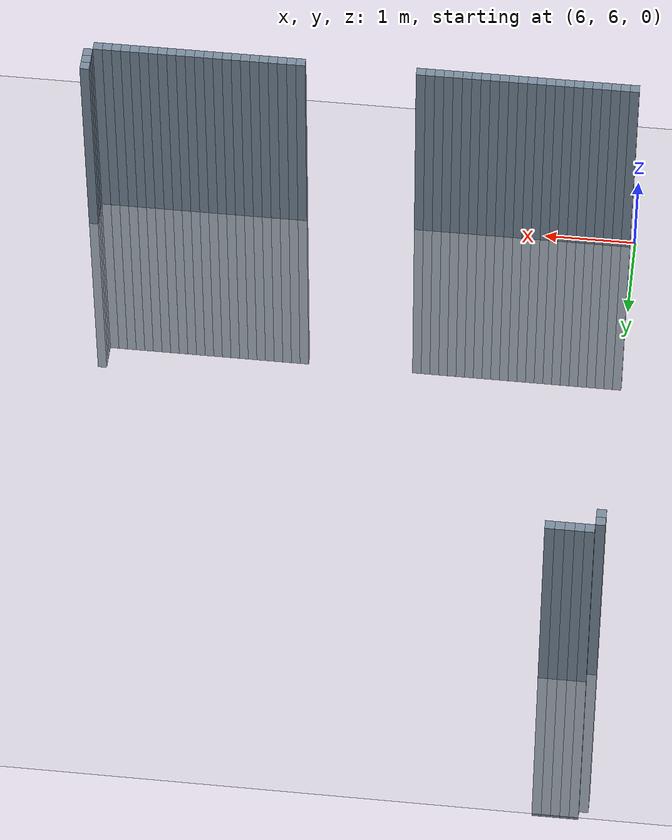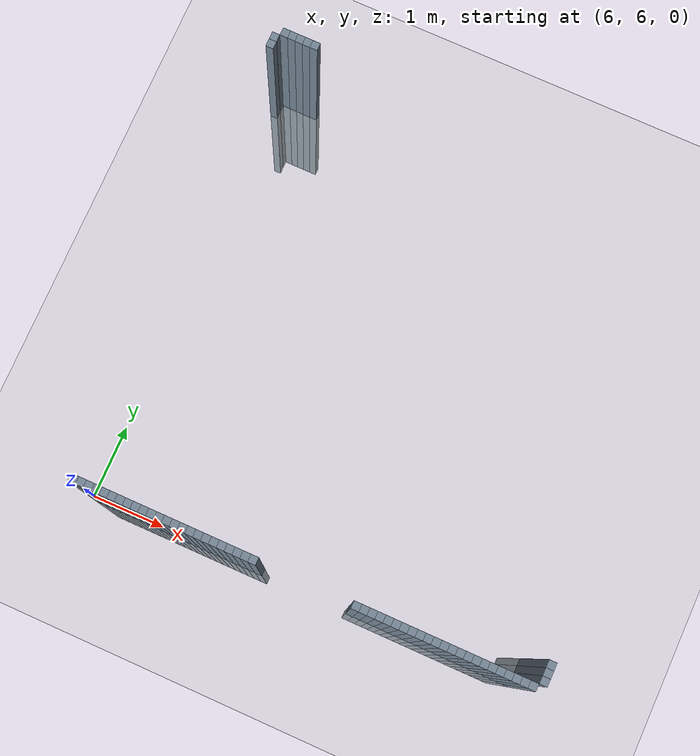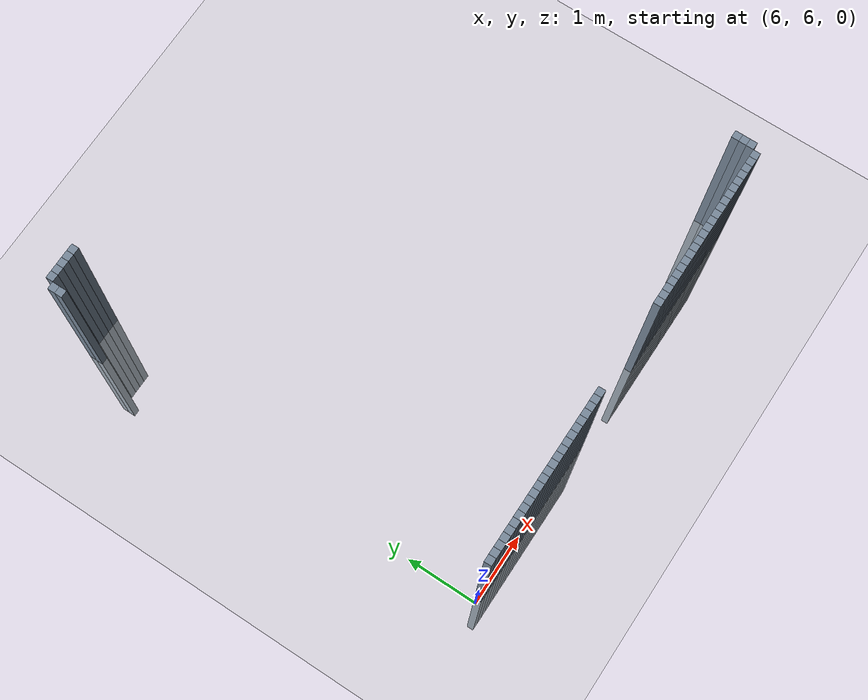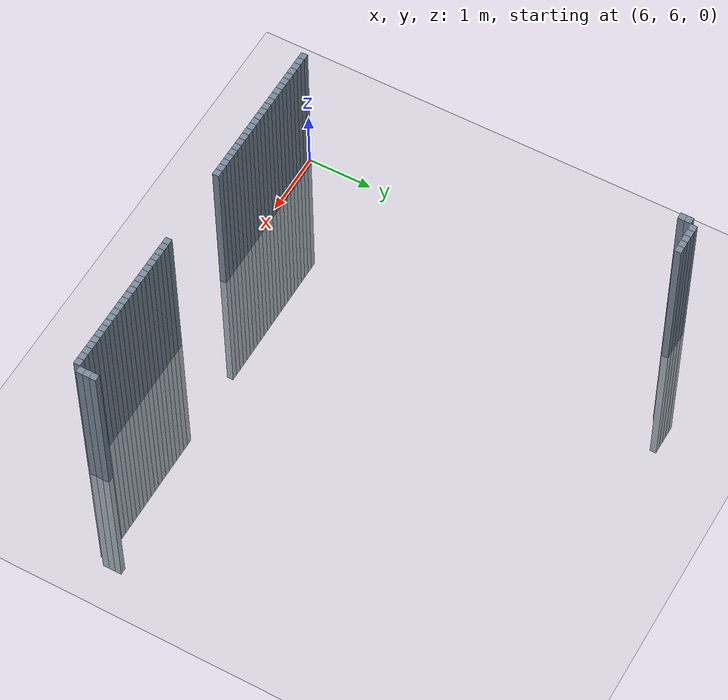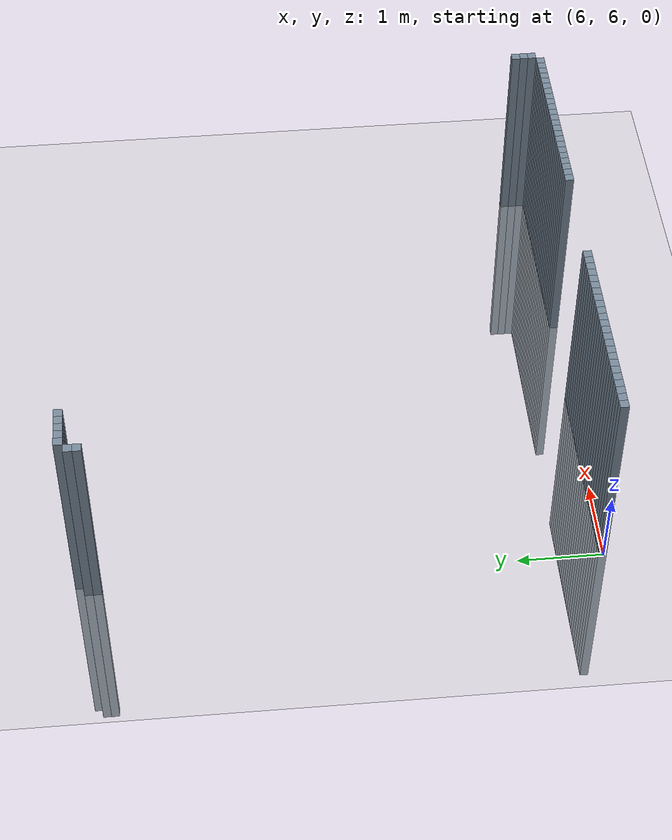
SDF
<sdf version="1.6">
 <world name="default">
  <model name="ground_plane">
   <static>1</static>
   <link name="link">
    <collision name="collision">
     <geometry><plane><normal>0 0 1</normal><size>100 100</size></plane></geometry>
     <surface><friction><ode><mu>100</mu><mu2>50</mu2></ode></friction></surface>
    </collision>
    <visual name="visual">
     <cast_shadows>0</cast_shadows>
     <geometry><plane><normal>0 0 1</normal><size>100 100</size></plane></geometry>
     <material>
      <script><uri>file://media/materials/scripts/gazebo.material</uri><name>Gazebo/Grey</name></script>
     </material>
    </visual>
   </link>
  </model>
  <model name="unit_cylinder_299">
   <static>1</static>
   <pose>6 11.8 0 0 -0 0</pose>
   <link name="link">
    <inertial>
     <mass>1</mass>
     <inertia><ixx>0.145833</ixx><ixy>0</ixy><ixz>0</ixz><iyy>0.145833</iyy><iyz>0</iyz><izz>0.125</izz></inertia>
    </inertial>
    <collision name="collision"><geometry><box><size>0.1 0.1 5</size></box></geometry></collision>
    <visual name="visual">
     <geometry><box><size>0.1 0.1 5</size></box></geometry>
     <material><ambient>0.466667 0.533333 0.6 1</ambient><diffuse>0.466667 0.533333 0.6 1</diffuse></material>
     <material>
      <script><name>Gazebo/Grey</name><uri>file://media/materials/scripts/gazebo.material</uri></script>
     </material>
    </visual>
   </link>
  </model>
  <model name="unit_cylinder_300">
   <static>1</static>
   <pose>6 11.9 0 0 -0 0</pose>
   <link name="link">
    <inertial>
     <mass>1</mass>
     <inertia><ixx>0.145833</ixx><ixy>0</ixy><ixz>0</ixz><iyy>0.145833</iyy><iyz>0</iyz><izz>0.125</izz></inertia>
    </inertial>
    <collision name="collision"><geometry><box><size>0.1 0.1 5</size></box></geometry></collision>
    <visual name="visual">
     <geometry><box><size>0.1 0.1 5</size></box></geometry>
     <material><ambient>0.466667 0.533333 0.6 1</ambient><diffuse>0.466667 0.533333 0.6 1</diffuse></material>
     <material>
      <script><name>Gazebo/Grey</name><uri>file://media/materials/scripts/gazebo.material</uri></script>
     </material>
    </visual>
   </link>
  </model>
  <model name="unit_cylinder_363">
   <static>1</static>
   <pose>6.1 6 0 0 -0 0</pose>
   <link name="link">
    <inertial>
     <mass>1</mass>
     <inertia><ixx>0.145833</ixx><ixy>0</ixy><ixz>0</ixz><iyy>0.145833</iyy><iyz>0</iyz><izz>0.125</izz></inertia>
    </inertial>
    <collision name="collision"><geometry><box><size>0.1 0.1 5</size></box></geometry></collision>
    <visual name="visual">
     <geometry><box><size>0.1 0.1 5</size></box></geometry>
     <material><ambient>0.466667 0.533333 0.6 1</ambient><diffuse>0.466667 0.533333 0.6 1</diffuse></material>
     <material>
      <script><name>Gazebo/Grey</name><uri>file://media/materials/scripts/gazebo.material</uri></script>
     </material>
    </visual>
   </link>
  </model>
  <model name="unit_cylinder_364">
   <static>1</static>
   <pose>6.1 12 0 0 -0 0</pose>
   <link name="link">
    <inertial>
     <mass>1</mass>
     <inertia><ixx>0.145833</ixx><ixy>0</ixy><ixz>0</ixz><iyy>0.145833</iyy><iyz>0</iyz><izz>0.125</izz></inertia>
    </inertial>
    <collision name="collision"><geometry><box><size>0.1 0.1 5</size></box></geometry></collision>
    <visual name="visual">
     <geometry><box><size>0.1 0.1 5</size></box></geometry>
     <material><ambient>0.466667 0.533333 0.6 1</ambient><diffuse>0.466667 0.533333 0.6 1</diffuse></material>
     <material>
      <script><name>Gazebo/Grey</name><uri>file://media/materials/scripts/gazebo.material</uri></script>
     </material>
    </visual>
   </link>
  </model>
  <model name="unit_cylinder_367">
   <static>1</static>
   <pose>6.2 6 0 0 -0 0</pose>
   <link name="link">
    <inertial>
     <mass>1</mass>
     <inertia><ixx>0.145833</ixx><ixy>0</ixy><ixz>0</ixz><iyy>0.145833</iyy><iyz>0</iyz><izz>0.125</izz></inertia>
    </inertial>
    <collision name="collision"><geometry><box><size>0.1 0.1 5</size></box></geometry></collision>
    <visual name="visual">
     <geometry><box><size>0.1 0.1 5</size></box></geometry>
     <material><ambient>0.466667 0.533333 0.6 1</ambient><diffuse>0.466667 0.533333 0.6 1</diffuse></material>
     <material>
      <script><name>Gazebo/Grey</name><uri>file://media/materials/scripts/gazebo.material</uri></script>
     </material>
    </visual>
   </link>
  </model>
  <model name="unit_cylinder_368">
   <static>1</static>
   <pose>6.2 12 0 0 -0 0</pose>
   <link name="link">
    <inertial>
     <mass>1</mass>
     <inertia><ixx>0.145833</ixx><ixy>0</ixy><ixz>0</ixz><iyy>0.145833</iyy><iyz>0</iyz><izz>0.125</izz></inertia>
    </inertial>
    <collision name="collision"><geometry><box><size>0.1 0.1 5</size></box></geometry></collision>
    <visual name="visual">
     <geometry><box><size>0.1 0.1 5</size></box></geometry>
     <material><ambient>0.466667 0.533333 0.6 1</ambient><diffuse>0.466667 0.533333 0.6 1</diffuse></material>
     <material>
      <script><name>Gazebo/Grey</name><uri>file://media/materials/scripts/gazebo.material</uri></script>
     </material>
    </visual>
   </link>
  </model>
  <model name="unit_cylinder_371">
   <static>1</static>
   <pose>6.3 6 0 0 -0 0</pose>
   <link name="link">
    <inertial>
     <mass>1</mass>
     <inertia><ixx>0.145833</ixx><ixy>0</ixy><ixz>0</ixz><iyy>0.145833</iyy><iyz>0</iyz><izz>0.125</izz></inertia>
    </inertial>
    <collision name="collision"><geometry><box><size>0.1 0.1 5</size></box></geometry></collision>
    <visual name="visual">
     <geometry><box><size>0.1 0.1 5</size></box></geometry>
     <material><ambient>0.466667 0.533333 0.6 1</ambient><diffuse>0.466667 0.533333 0.6 1</diffuse></material>
     <material>
      <script><name>Gazebo/Grey</name><uri>file://media/materials/scripts/gazebo.material</uri></script>
     </material>
    </visual>
   </link>
  </model>
  <model name="unit_cylinder_372">
   <static>1</static>
   <pose>6.3 12 0 0 -0 0</pose>
   <link name="link">
    <inertial>
     <mass>1</mass>
     <inertia><ixx>0.145833</ixx><ixy>0</ixy><ixz>0</ixz><iyy>0.145833</iyy><iyz>0</iyz><izz>0.125</izz></inertia>
    </inertial>
    <collision name="collision"><geometry><box><size>0.1 0.1 5</size></box></geometry></collision>
    <visual name="visual">
     <geometry><box><size>0.1 0.1 5</size></box></geometry>
     <material><ambient>0.466667 0.533333 0.6 1</ambient><diffuse>0.466667 0.533333 0.6 1</diffuse></material>
     <material>
      <script><name>Gazebo/Grey</name><uri>file://media/materials/scripts/gazebo.material</uri></script>
     </material>
    </visual>
   </link>
  </model>
  <model name="unit_cylinder_375">
   <static>1</static>
   <pose>6.4 6 0 0 -0 0</pose>
   <link name="link">
    <inertial>
     <mass>1</mass>
     <inertia><ixx>0.145833</ixx><ixy>0</ixy><ixz>0</ixz><iyy>0.145833</iyy><iyz>0</iyz><izz>0.125</izz></inertia>
    </inertial>
    <collision name="collision"><geometry><box><size>0.1 0.1 5</size></box></geometry></collision>
    <visual name="visual">
     <geometry><box><size>0.1 0.1 5</size></box></geometry>
     <material><ambient>0.466667 0.533333 0.6 1</ambient><diffuse>0.466667 0.533333 0.6 1</diffuse></material>
     <material>
      <script><name>Gazebo/Grey</name><uri>file://media/materials/scripts/gazebo.material</uri></script>
     </material>
    </visual>
   </link>
  </model>
  <model name="unit_cylinder_376">
   <static>1</static>
   <pose>6.4 12 0 0 -0 0</pose>
   <link name="link">
    <inertial>
     <mass>1</mass>
     <inertia><ixx>0.145833</ixx><ixy>0</ixy><ixz>0</ixz><iyy>0.145833</iyy><iyz>0</iyz><izz>0.125</izz></inertia>
    </inertial>
    <collision name="collision"><geometry><box><size>0.1 0.1 5</size></box></geometry></collision>
    <visual name="visual">
     <geometry><box><size>0.1 0.1 5</size></box></geometry>
     <material><ambient>0.466667 0.533333 0.6 1</ambient><diffuse>0.466667 0.533333 0.6 1</diffuse></material>
     <material>
      <script><name>Gazebo/Grey</name><uri>file://media/materials/scripts/gazebo.material</uri></script>
     </material>
    </visual>
   </link>
  </model>
  <model name="unit_cylinder_379">
   <static>1</static>
   <pose>6.5 6 0 0 -0 0</pose>
   <link name="link">
    <inertial>
     <mass>1</mass>
     <inertia><ixx>0.145833</ixx><ixy>0</ixy><ixz>0</ixz><iyy>0.145833</iyy><iyz>0</iyz><izz>0.125</izz></inertia>
    </inertial>
    <collision name="collision"><geometry><box><size>0.1 0.1 5</size></box></geometry></collision>
    <visual name="visual">
     <geometry><box><size>0.1 0.1 5</size></box></geometry>
     <material><ambient>0.466667 0.533333 0.6 1</ambient><diffuse>0.466667 0.533333 0.6 1</diffuse></material>
     <material>
      <script><name>Gazebo/Grey</name><uri>file://media/materials/scripts/gazebo.material</uri></script>
     </material>
    </visual>
   </link>
  </model>
  <model name="unit_cylinder_380">
   <static>1</static>
   <pose>6.5 12 0 0 -0 0</pose>
   <link name="link">
    <inertial>
     <mass>1</mass>
     <inertia><ixx>0.145833</ixx><ixy>0</ixy><ixz>0</ixz><iyy>0.145833</iyy><iyz>0</iyz><izz>0.125</izz></inertia>
    </inertial>
    <collision name="collision"><geometry><box><size>0.1 0.1 5</size></box></geometry></collision>
    <visual name="visual">
     <geometry><box><size>0.1 0.1 5</size></box></geometry>
     <material><ambient>0.466667 0.533333 0.6 1</ambient><diffuse>0.466667 0.533333 0.6 1</diffuse></material>
     <material>
      <script><name>Gazebo/Grey</name><uri>file://media/materials/scripts/gazebo.material</uri></script>
     </material>
    </visual>
   </link>
  </model>
  <model name="unit_cylinder_383">
   <static>1</static>
   <pose>6.6 6 0 0 -0 0</pose>
   <link name="link">
    <inertial>
     <mass>1</mass>
     <inertia><ixx>0.145833</ixx><ixy>0</ixy><ixz>0</ixz><iyy>0.145833</iyy><iyz>0</iyz><izz>0.125</izz></inertia>
    </inertial>
    <collision name="collision"><geometry><box><size>0.1 0.1 5</size></box></geometry></collision>
    <visual name="visual">
     <geometry><box><size>0.1 0.1 5</size></box></geometry>
     <material><ambient>0.466667 0.533333 0.6 1</ambient><diffuse>0.466667 0.533333 0.6 1</diffuse></material>
     <material>
      <script><name>Gazebo/Grey</name><uri>file://media/materials/scripts/gazebo.material</uri></script>
     </material>
    </visual>
   </link>
  </model>
  <model name="unit_cylinder_387">
   <static>1</static>
   <pose>6.7 6 0 0 -0 0</pose>
   <link name="link">
    <inertial>
     <mass>1</mass>
     <inertia><ixx>0.145833</ixx><ixy>0</ixy><ixz>0</ixz><iyy>0.145833</iyy><iyz>0</iyz><izz>0.125</izz></inertia>
    </inertial>
    <collision name="collision"><geometry><box><size>0.1 0.1 5</size></box></geometry></collision>
    <visual name="visual">
     <geometry><box><size>0.1 0.1 5</size></box></geometry>
     <material><ambient>0.466667 0.533333 0.6 1</ambient><diffuse>0.466667 0.533333 0.6 1</diffuse></material>
     <material>
      <script><name>Gazebo/Grey</name><uri>file://media/materials/scripts/gazebo.material</uri></script>
     </material>
    </visual>
   </link>
  </model>
  <model name="unit_cylinder_391">
   <static>1</static>
   <pose>6.8 6 0 0 -0 0</pose>
   <link name="link">
    <inertial>
     <mass>1</mass>
     <inertia><ixx>0.145833</ixx><ixy>0</ixy><ixz>0</ixz><iyy>0.145833</iyy><iyz>0</iyz><izz>0.125</izz></inertia>
    </inertial>
    <collision name="collision"><geometry><box><size>0.1 0.1 5</size></box></geometry></collision>
    <visual name="visual">
     <geometry><box><size>0.1 0.1 5</size></box></geometry>
     <material><ambient>0.466667 0.533333 0.6 1</ambient><diffuse>0.466667 0.533333 0.6 1</diffuse></material>
     <material>
      <script><name>Gazebo/Grey</name><uri>file://media/materials/scripts/gazebo.material</uri></script>
     </material>
    </visual>
   </link>
  </model>
  <model name="unit_cylinder_395">
   <static>1</static>
   <pose>6.9 6 0 0 -0 0</pose>
   <link name="link">
    <inertial>
     <mass>1</mass>
     <inertia><ixx>0.145833</ixx><ixy>0</ixy><ixz>0</ixz><iyy>0.145833</iyy><iyz>0</iyz><izz>0.125</izz></inertia>
    </inertial>
    <collision name="collision"><geometry><box><size>0.1 0.1 5</size></box></geometry></collision>
    <visual name="visual">
     <geometry><box><size>0.1 0.1 5</size></box></geometry>
     <material><ambient>0.466667 0.533333 0.6 1</ambient><diffuse>0.466667 0.533333 0.6 1</diffuse></material>
     <material>
      <script><name>Gazebo/Grey</name><uri>file://media/materials/scripts/gazebo.material</uri></script>
     </material>
    </visual>
   </link>
  </model>
  <model name="unit_cylinder_399">
   <static>1</static>
   <pose>7 6 0 0 -0 0</pose>
   <link name="link">
    <inertial>
     <mass>1</mass>
     <inertia><ixx>0.145833</ixx><ixy>0</ixy><ixz>0</ixz><iyy>0.145833</iyy><iyz>0</iyz><izz>0.125</izz></inertia>
    </inertial>
    <collision name="collision"><geometry><box><size>0.1 0.1 5</size></box></geometry></collision>
    <visual name="visual">
     <geometry><box><size>0.1 0.1 5</size></box></geometry>
     <material><ambient>0.466667 0.533333 0.6 1</ambient><diffuse>0.466667 0.533333 0.6 1</diffuse></material>
     <material>
      <script><name>Gazebo/Grey</name><uri>file://media/materials/scripts/gazebo.material</uri></script>
     </material>
    </visual>
   </link>
  </model>
  <model name="unit_cylinder_403">
   <static>1</static>
   <pose>7.1 6 0 0 -0 0</pose>
   <link name="link">
    <inertial>
     <mass>1</mass>
     <inertia><ixx>0.145833</ixx><ixy>0</ixy><ixz>0</ixz><iyy>0.145833</iyy><iyz>0</iyz><izz>0.125</izz></inertia>
    </inertial>
    <collision name="collision"><geometry><box><size>0.1 0.1 5</size></box></geometry></collision>
    <visual name="visual">
     <geometry><box><size>0.1 0.1 5</size></box></geometry>
     <material><ambient>0.466667 0.533333 0.6 1</ambient><diffuse>0.466667 0.533333 0.6 1</diffuse></material>
     <material>
      <script><name>Gazebo/Grey</name><uri>file://media/materials/scripts/gazebo.material</uri></script>
     </material>
    </visual>
   </link>
  </model>
  <model name="unit_cylinder_407">
   <static>1</static>
   <pose>7.2 6 0 0 -0 0</pose>
   <link name="link">
    <inertial>
     <mass>1</mass>
     <inertia><ixx>0.145833</ixx><ixy>0</ixy><ixz>0</ixz><iyy>0.145833</iyy><iyz>0</iyz><izz>0.125</izz></inertia>
    </inertial>
    <collision name="collision"><geometry><box><size>0.1 0.1 5</size></box></geometry></collision>
    <visual name="visual">
     <geometry><box><size>0.1 0.1 5</size></box></geometry>
     <material><ambient>0.466667 0.533333 0.6 1</ambient><diffuse>0.466667 0.533333 0.6 1</diffuse></material>
     <material>
      <script><name>Gazebo/Grey</name><uri>file://media/materials/scripts/gazebo.material</uri></script>
     </material>
    </visual>
   </link>
  </model>
  <model name="unit_cylinder_411">
   <static>1</static>
   <pose>7.3 6 0 0 -0 0</pose>
   <link name="link">
    <inertial>
     <mass>1</mass>
     <inertia><ixx>0.145833</ixx><ixy>0</ixy><ixz>0</ixz><iyy>0.145833</iyy><iyz>0</iyz><izz>0.125</izz></inertia>
    </inertial>
    <collision name="collision"><geometry><box><size>0.1 0.1 5</size></box></geometry></collision>
    <visual name="visual">
     <geometry><box><size>0.1 0.1 5</size></box></geometry>
     <material><ambient>0.466667 0.533333 0.6 1</ambient><diffuse>0.466667 0.533333 0.6 1</diffuse></material>
     <material>
      <script><name>Gazebo/Grey</name><uri>file://media/materials/scripts/gazebo.material</uri></script>
     </material>
    </visual>
   </link>
  </model>
  <model name="unit_cylinder_415">
   <static>1</static>
   <pose>7.4 6 0 0 -0 0</pose>
   <link name="link">
    <inertial>
     <mass>1</mass>
     <inertia><ixx>0.145833</ixx><ixy>0</ixy><ixz>0</ixz><iyy>0.145833</iyy><iyz>0</iyz><izz>0.125</izz></inertia>
    </inertial>
    <collision name="collision"><geometry><box><size>0.1 0.1 5</size></box></geometry></collision>
    <visual name="visual">
     <geometry><box><size>0.1 0.1 5</size></box></geometry>
     <material><ambient>0.466667 0.533333 0.6 1</ambient><diffuse>0.466667 0.533333 0.6 1</diffuse></material>
     <material>
      <script><name>Gazebo/Grey</name><uri>file://media/materials/scripts/gazebo.material</uri></script>
     </material>
    </visual>
   </link>
  </model>
  <model name="unit_cylinder_419">
   <static>1</static>
   <pose>7.5 6 0 0 -0 0</pose>
   <link name="link">
    <inertial>
     <mass>1</mass>
     <inertia><ixx>0.145833</ixx><ixy>0</ixy><ixz>0</ixz><iyy>0.145833</iyy><iyz>0</iyz><izz>0.125</izz></inertia>
    </inertial>
    <collision name="collision"><geometry><box><size>0.1 0.1 5</size></box></geometry></collision>
    <visual name="visual">
     <geometry><box><size>0.1 0.1 5</size></box></geometry>
     <material><ambient>0.466667 0.533333 0.6 1</ambient><diffuse>0.466667 0.533333 0.6 1</diffuse></material>
     <material>
      <script><name>Gazebo/Grey</name><uri>file://media/materials/scripts/gazebo.material</uri></script>
     </material>
    </visual>
   </link>
  </model>
  <model name="unit_cylinder_423">
   <static>1</static>
   <pose>7.6 6 0 0 -0 0</pose>
   <link name="link">
    <inertial>
     <mass>1</mass>
     <inertia><ixx>0.145833</ixx><ixy>0</ixy><ixz>0</ixz><iyy>0.145833</iyy><iyz>0</iyz><izz>0.125</izz></inertia>
    </inertial>
    <collision name="collision"><geometry><box><size>0.1 0.1 5</size></box></geometry></collision>
    <visual name="visual">
     <geometry><box><size>0.1 0.1 5</size></box></geometry>
     <material><ambient>0.466667 0.533333 0.6 1</ambient><diffuse>0.466667 0.533333 0.6 1</diffuse></material>
     <material>
      <script><name>Gazebo/Grey</name><uri>file://media/materials/scripts/gazebo.material</uri></script>
     </material>
    </visual>
   </link>
  </model>
  <model name="unit_cylinder_427">
   <static>1</static>
   <pose>7.7 6 0 0 -0 0</pose>
   <link name="link">
    <inertial>
     <mass>1</mass>
     <inertia><ixx>0.145833</ixx><ixy>0</ixy><ixz>0</ixz><iyy>0.145833</iyy><iyz>0</iyz><izz>0.125</izz></inertia>
    </inertial>
    <collision name="collision"><geometry><box><size>0.1 0.1 5</size></box></geometry></collision>
    <visual name="visual">
     <geometry><box><size>0.1 0.1 5</size></box></geometry>
     <material><ambient>0.466667 0.533333 0.6 1</ambient><diffuse>0.466667 0.533333 0.6 1</diffuse></material>
     <material>
      <script><name>Gazebo/Grey</name><uri>file://media/materials/scripts/gazebo.material</uri></script>
     </material>
    </visual>
   </link>
  </model>
  <model name="unit_cylinder_431">
   <static>1</static>
   <pose>7.8 6 0 0 -0 0</pose>
   <link name="link">
    <inertial>
     <mass>1</mass>
     <inertia><ixx>0.145833</ixx><ixy>0</ixy><ixz>0</ixz><iyy>0.145833</iyy><iyz>0</iyz><izz>0.125</izz></inertia>
    </inertial>
    <collision name="collision"><geometry><box><size>0.1 0.1 5</size></box></geometry></collision>
    <visual name="visual">
     <geometry><box><size>0.1 0.1 5</size></box></geometry>
     <material><ambient>0.466667 0.533333 0.6 1</ambient><diffuse>0.466667 0.533333 0.6 1</diffuse></material>
     <material>
      <script><name>Gazebo/Grey</name><uri>file://media/materials/scripts/gazebo.material</uri></script>
     </material>
    </visual>
   </link>
  </model>
  <model name="unit_cylinder_435">
   <static>1</static>
   <pose>7.9 6 0 0 -0 0</pose>
   <link name="link">
    <inertial>
     <mass>1</mass>
     <inertia><ixx>0.145833</ixx><ixy>0</ixy><ixz>0</ixz><iyy>0.145833</iyy><iyz>0</iyz><izz>0.125</izz></inertia>
    </inertial>
    <collision name="collision"><geometry><box><size>0.1 0.1 5</size></box></geometry></collision>
    <visual name="visual">
     <geometry><box><size>0.1 0.1 5</size></box></geometry>
     <material><ambient>0.466667 0.533333 0.6 1</ambient><diffuse>0.466667 0.533333 0.6 1</diffuse></material>
     <material>
      <script><name>Gazebo/Grey</name><uri>file://media/materials/scripts/gazebo.material</uri></script>
     </material>
    </visual>
   </link>
  </model>
  <model name="unit_cylinder_439">
   <static>1</static>
   <pose>8 6 0 0 -0 0</pose>
   <link name="link">
    <inertial>
     <mass>1</mass>
     <inertia><ixx>0.145833</ixx><ixy>0</ixy><ixz>0</ixz><iyy>0.145833</iyy><iyz>0</iyz><izz>0.125</izz></inertia>
    </inertial>
    <collision name="collision"><geometry><box><size>0.1 0.1 5</size></box></geometry></collision>
    <visual name="visual">
     <geometry><box><size>0.1 0.1 5</size></box></geometry>
     <material><ambient>0.466667 0.533333 0.6 1</ambient><diffuse>0.466667 0.533333 0.6 1</diffuse></material>
     <material>
      <script><name>Gazebo/Grey</name><uri>file://media/materials/scripts/gazebo.material</uri></script>
     </material>
    </visual>
   </link>
  </model>
  <model name="unit_cylinder_443">
   <static>1</static>
   <pose>8.1 6 0 0 -0 0</pose>
   <link name="link">
    <inertial>
     <mass>1</mass>
     <inertia><ixx>0.145833</ixx><ixy>0</ixy><ixz>0</ixz><iyy>0.145833</iyy><iyz>0</iyz><izz>0.125</izz></inertia>
    </inertial>
    <collision name="collision"><geometry><box><size>0.1 0.1 5</size></box></geometry></collision>
    <visual name="visual">
     <geometry><box><size>0.1 0.1 5</size></box></geometry>
     <material><ambient>0.466667 0.533333 0.6 1</ambient><diffuse>0.466667 0.533333 0.6 1</diffuse></material>
     <material>
      <script><name>Gazebo/Grey</name><uri>file://media/materials/scripts/gazebo.material</uri></script>
     </material>
    </visual>
   </link>
  </model>
  <model name="unit_cylinder_447">
   <static>1</static>
   <pose>8.2 6 0 0 -0 0</pose>
   <link name="link">
    <inertial>
     <mass>1</mass>
     <inertia><ixx>0.145833</ixx><ixy>0</ixy><ixz>0</ixz><iyy>0.145833</iyy><iyz>0</iyz><izz>0.125</izz></inertia>
    </inertial>
    <collision name="collision"><geometry><box><size>0.1 0.1 5</size></box></geometry></collision>
    <visual name="visual">
     <geometry><box><size>0.1 0.1 5</size></box></geometry>
     <material><ambient>0.466667 0.533333 0.6 1</ambient><diffuse>0.466667 0.533333 0.6 1</diffuse></material>
     <material>
      <script><name>Gazebo/Grey</name><uri>file://media/materials/scripts/gazebo.material</uri></script>
     </material>
    </visual>
   </link>
  </model>
  <model name="unit_cylinder_451">
   <static>1</static>
   <pose>8.3 6 0 0 -0 0</pose>
   <link name="link">
    <inertial>
     <mass>1</mass>
     <inertia><ixx>0.145833</ixx><ixy>0</ixy><ixz>0</ixz><iyy>0.145833</iyy><iyz>0</iyz><izz>0.125</izz></inertia>
    </inertial>
    <collision name="collision"><geometry><box><size>0.1 0.1 5</size></box></geometry></collision>
    <visual name="visual">
     <geometry><box><size>0.1 0.1 5</size></box></geometry>
     <material><ambient>0.466667 0.533333 0.6 1</ambient><diffuse>0.466667 0.533333 0.6 1</diffuse></material>
     <material>
      <script><name>Gazebo/Grey</name><uri>file://media/materials/scripts/gazebo.material</uri></script>
     </material>
    </visual>
   </link>
  </model>
  <model name="unit_cylinder_455">
   <static>1</static>
   <pose>8.4 6 0 0 -0 0</pose>
   <link name="link">
    <inertial>
     <mass>1</mass>
     <inertia><ixx>0.145833</ixx><ixy>0</ixy><ixz>0</ixz><iyy>0.145833</iyy><iyz>0</iyz><izz>0.125</izz></inertia>
    </inertial>
    <collision name="collision"><geometry><box><size>0.1 0.1 5</size></box></geometry></collision>
    <visual name="visual">
     <geometry><box><size>0.1 0.1 5</size></box></geometry>
     <material><ambient>0.466667 0.533333 0.6 1</ambient><diffuse>0.466667 0.533333 0.6 1</diffuse></material>
     <material>
      <script><name>Gazebo/Grey</name><uri>file://media/materials/scripts/gazebo.material</uri></script>
     </material>
    </visual>
   </link>
  </model>
  <model name="unit_cylinder_507">
   <static>1</static>
   <pose>9.7 6 0 0 -0 0</pose>
   <link name="link">
    <inertial>
     <mass>1</mass>
     <inertia><ixx>0.145833</ixx><ixy>0</ixy><ixz>0</ixz><iyy>0.145833</iyy><iyz>0</iyz><izz>0.125</izz></inertia>
    </inertial>
    <collision name="collision"><geometry><box><size>0.1 0.1 5</size></box></geometry></collision>
    <visual name="visual">
     <geometry><box><size>0.1 0.1 5</size></box></geometry>
     <material><ambient>0.466667 0.533333 0.6 1</ambient><diffuse>0.466667 0.533333 0.6 1</diffuse></material>
     <material>
      <script><name>Gazebo/Grey</name><uri>file://media/materials/scripts/gazebo.material</uri></script>
     </material>
    </visual>
   </link>
  </model>
  <model name="unit_cylinder_511">
   <static>1</static>
   <pose>9.8 6 0 0 -0 0</pose>
   <link name="link">
    <inertial>
     <mass>1</mass>
     <inertia><ixx>0.145833</ixx><ixy>0</ixy><ixz>0</ixz><iyy>0.145833</iyy><iyz>0</iyz><izz>0.125</izz></inertia>
    </inertial>
    <collision name="collision"><geometry><box><size>0.1 0.1 5</size></box></geometry></collision>
    <visual name="visual">
     <geometry><box><size>0.1 0.1 5</size></box></geometry>
     <material><ambient>0.466667 0.533333 0.6 1</ambient><diffuse>0.466667 0.533333 0.6 1</diffuse></material>
     <material>
      <script><name>Gazebo/Grey</name><uri>file://media/materials/scripts/gazebo.material</uri></script>
     </material>
    </visual>
   </link>
  </model>
  <model name="unit_cylinder_515">
   <static>1</static>
   <pose>9.9 6 0 0 -0 0</pose>
   <link name="link">
    <inertial>
     <mass>1</mass>
     <inertia><ixx>0.145833</ixx><ixy>0</ixy><ixz>0</ixz><iyy>0.145833</iyy><iyz>0</iyz><izz>0.125</izz></inertia>
    </inertial>
    <collision name="collision"><geometry><box><size>0.1 0.1 5</size></box></geometry></collision>
    <visual name="visual">
     <geometry><box><size>0.1 0.1 5</size></box></geometry>
     <material><ambient>0.466667 0.533333 0.6 1</ambient><diffuse>0.466667 0.533333 0.6 1</diffuse></material>
     <material>
      <script><name>Gazebo/Grey</name><uri>file://media/materials/scripts/gazebo.material</uri></script>
     </material>
    </visual>
   </link>
  </model>
  <model name="unit_cylinder_519">
   <static>1</static>
   <pose>10 6 0 0 -0 0</pose>
   <link name="link">
    <inertial>
     <mass>1</mass>
     <inertia><ixx>0.145833</ixx><ixy>0</ixy><ixz>0</ixz><iyy>0.145833</iyy><iyz>0</iyz><izz>0.125</izz></inertia>
    </inertial>
    <collision name="collision"><geometry><box><size>0.1 0.1 5</size></box></geometry></collision>
    <visual name="visual">
     <geometry><box><size>0.1 0.1 5</size></box></geometry>
     <material><ambient>0.466667 0.533333 0.6 1</ambient><diffuse>0.466667 0.533333 0.6 1</diffuse></material>
     <material>
      <script><name>Gazebo/Grey</name><uri>file://media/materials/scripts/gazebo.material</uri></script>
     </material>
    </visual>
   </link>
  </model>
  <model name="unit_cylinder_523">
   <static>1</static>
   <pose>10.1 6 0 0 -0 0</pose>
   <link name="link">
    <inertial>
     <mass>1</mass>
     <inertia><ixx>0.145833</ixx><ixy>0</ixy><ixz>0</ixz><iyy>0.145833</iyy><iyz>0</iyz><izz>0.125</izz></inertia>
    </inertial>
    <collision name="collision"><geometry><box><size>0.1 0.1 5</size></box></geometry></collision>
    <visual name="visual">
     <geometry><box><size>0.1 0.1 5</size></box></geometry>
     <material><ambient>0.466667 0.533333 0.6 1</ambient><diffuse>0.466667 0.533333 0.6 1</diffuse></material>
     <material>
      <script><name>Gazebo/Grey</name><uri>file://media/materials/scripts/gazebo.material</uri></script>
     </material>
    </visual>
   </link>
  </model>
  <model name="unit_cylinder_527">
   <static>1</static>
   <pose>10.2 6 0 0 -0 0</pose>
   <link name="link">
    <inertial>
     <mass>1</mass>
     <inertia><ixx>0.145833</ixx><ixy>0</ixy><ixz>0</ixz><iyy>0.145833</iyy><iyz>0</iyz><izz>0.125</izz></inertia>
    </inertial>
    <collision name="collision"><geometry><box><size>0.1 0.1 5</size></box></geometry></collision>
    <visual name="visual">
     <geometry><box><size>0.1 0.1 5</size></box></geometry>
     <material><ambient>0.466667 0.533333 0.6 1</ambient><diffuse>0.466667 0.533333 0.6 1</diffuse></material>
     <material>
      <script><name>Gazebo/Grey</name><uri>file://media/materials/scripts/gazebo.material</uri></script>
     </material>
    </visual>
   </link>
  </model>
  <model name="unit_cylinder_531">
   <static>1</static>
   <pose>10.3 6 0 0 -0 0</pose>
   <link name="link">
    <inertial>
     <mass>1</mass>
     <inertia><ixx>0.145833</ixx><ixy>0</ixy><ixz>0</ixz><iyy>0.145833</iyy><iyz>0</iyz><izz>0.125</izz></inertia>
    </inertial>
    <collision name="collision"><geometry><box><size>0.1 0.1 5</size></box></geometry></collision>
    <visual name="visual">
     <geometry><box><size>0.1 0.1 5</size></box></geometry>
     <material><ambient>0.466667 0.533333 0.6 1</ambient><diffuse>0.466667 0.533333 0.6 1</diffuse></material>
     <material>
      <script><name>Gazebo/Grey</name><uri>file://media/materials/scripts/gazebo.material</uri></script>
     </material>
    </visual>
   </link>
  </model>
  <model name="unit_cylinder_535">
   <static>1</static>
   <pose>10.4 6 0 0 -0 0</pose>
   <link name="link">
    <inertial>
     <mass>1</mass>
     <inertia><ixx>0.145833</ixx><ixy>0</ixy><ixz>0</ixz><iyy>0.145833</iyy><iyz>0</iyz><izz>0.125</izz></inertia>
    </inertial>
    <collision name="collision"><geometry><box><size>0.1 0.1 5</size></box></geometry></collision>
    <visual name="visual">
     <geometry><box><size>0.1 0.1 5</size></box></geometry>
     <material><ambient>0.466667 0.533333 0.6 1</ambient><diffuse>0.466667 0.533333 0.6 1</diffuse></material>
     <material>
      <script><name>Gazebo/Grey</name><uri>file://media/materials/scripts/gazebo.material</uri></script>
     </material>
    </visual>
   </link>
  </model>
  <model name="unit_cylinder_539">
   <static>1</static>
   <pose>10.5 6 0 0 -0 0</pose>
   <link name="link">
    <inertial>
     <mass>1</mass>
     <inertia><ixx>0.145833</ixx><ixy>0</ixy><ixz>0</ixz><iyy>0.145833</iyy><iyz>0</iyz><izz>0.125</izz></inertia>
    </inertial>
    <collision name="collision"><geometry><box><size>0.1 0.1 5</size></box></geometry></collision>
    <visual name="visual">
     <geometry><box><size>0.1 0.1 5</size></box></geometry>
     <material><ambient>0.466667 0.533333 0.6 1</ambient><diffuse>0.466667 0.533333 0.6 1</diffuse></material>
     <material>
      <script><name>Gazebo/Grey</name><uri>file://media/materials/scripts/gazebo.material</uri></script>
     </material>
    </visual>
   </link>
  </model>
  <model name="unit_cylinder_543">
   <static>1</static>
   <pose>10.6 6 0 0 -0 0</pose>
   <link name="link">
    <inertial>
     <mass>1</mass>
     <inertia><ixx>0.145833</ixx><ixy>0</ixy><ixz>0</ixz><iyy>0.145833</iyy><iyz>0</iyz><izz>0.125</izz></inertia>
    </inertial>
    <collision name="collision"><geometry><box><size>0.1 0.1 5</size></box></geometry></collision>
    <visual name="visual">
     <geometry><box><size>0.1 0.1 5</size></box></geometry>
     <material><ambient>0.466667 0.533333 0.6 1</ambient><diffuse>0.466667 0.533333 0.6 1</diffuse></material>
     <material>
      <script><name>Gazebo/Grey</name><uri>file://media/materials/scripts/gazebo.material</uri></script>
     </material>
    </visual>
   </link>
  </model>
  <model name="unit_cylinder_547">
   <static>1</static>
   <pose>10.7 6 0 0 -0 0</pose>
   <link name="link">
    <inertial>
     <mass>1</mass>
     <inertia><ixx>0.145833</ixx><ixy>0</ixy><ixz>0</ixz><iyy>0.145833</iyy><iyz>0</iyz><izz>0.125</izz></inertia>
    </inertial>
    <collision name="collision"><geometry><box><size>0.1 0.1 5</size></box></geometry></collision>
    <visual name="visual">
     <geometry><box><size>0.1 0.1 5</size></box></geometry>
     <material><ambient>0.466667 0.533333 0.6 1</ambient><diffuse>0.466667 0.533333 0.6 1</diffuse></material>
     <material>
      <script><name>Gazebo/Grey</name><uri>file://media/materials/scripts/gazebo.material</uri></script>
     </material>
    </visual>
   </link>
  </model>
  <model name="unit_cylinder_551">
   <static>1</static>
   <pose>10.8 6 0 0 -0 0</pose>
   <link name="link">
    <inertial>
     <mass>1</mass>
     <inertia><ixx>0.145833</ixx><ixy>0</ixy><ixz>0</ixz><iyy>0.145833</iyy><iyz>0</iyz><izz>0.125</izz></inertia>
    </inertial>
    <collision name="collision"><geometry><box><size>0.1 0.1 5</size></box></geometry></collision>
    <visual name="visual">
     <geometry><box><size>0.1 0.1 5</size></box></geometry>
     <material><ambient>0.466667 0.533333 0.6 1</ambient><diffuse>0.466667 0.533333 0.6 1</diffuse></material>
     <material>
      <script><name>Gazebo/Grey</name><uri>file://media/materials/scripts/gazebo.material</uri></script>
     </material>
    </visual>
   </link>
  </model>
  <model name="unit_cylinder_555">
   <static>1</static>
   <pose>10.9 6 0 0 -0 0</pose>
   <link name="link">
    <inertial>
     <mass>1</mass>
     <inertia><ixx>0.145833</ixx><ixy>0</ixy><ixz>0</ixz><iyy>0.145833</iyy><iyz>0</iyz><izz>0.125</izz></inertia>
    </inertial>
    <collision name="collision"><geometry><box><size>0.1 0.1 5</size></box></geometry></collision>
    <visual name="visual">
     <geometry><box><size>0.1 0.1 5</size></box></geometry>
     <material><ambient>0.466667 0.533333 0.6 1</ambient><diffuse>0.466667 0.533333 0.6 1</diffuse></material>
     <material>
      <script><name>Gazebo/Grey</name><uri>file://media/materials/scripts/gazebo.material</uri></script>
     </material>
    </visual>
   </link>
  </model>
  <model name="unit_cylinder_559">
   <static>1</static>
   <pose>11 6 0 0 -0 0</pose>
   <link name="link">
    <inertial>
     <mass>1</mass>
     <inertia><ixx>0.145833</ixx><ixy>0</ixy><ixz>0</ixz><iyy>0.145833</iyy><iyz>0</iyz><izz>0.125</izz></inertia>
    </inertial>
    <collision name="collision"><geometry><box><size>0.1 0.1 5</size></box></geometry></collision>
    <visual name="visual">
     <geometry><box><size>0.1 0.1 5</size></box></geometry>
     <material><ambient>0.466667 0.533333 0.6 1</ambient><diffuse>0.466667 0.533333 0.6 1</diffuse></material>
     <material>
      <script><name>Gazebo/Grey</name><uri>file://media/materials/scripts/gazebo.material</uri></script>
     </material>
    </visual>
   </link>
  </model>
  <model name="unit_cylinder_563">
   <static>1</static>
   <pose>11.1 6 0 0 -0 0</pose>
   <link name="link">
    <inertial>
     <mass>1</mass>
     <inertia><ixx>0.145833</ixx><ixy>0</ixy><ixz>0</ixz><iyy>0.145833</iyy><iyz>0</iyz><izz>0.125</izz></inertia>
    </inertial>
    <collision name="collision"><geometry><box><size>0.1 0.1 5</size></box></geometry></collision>
    <visual name="visual">
     <geometry><box><size>0.1 0.1 5</size></box></geometry>
     <material><ambient>0.466667 0.533333 0.6 1</ambient><diffuse>0.466667 0.533333 0.6 1</diffuse></material>
     <material>
      <script><name>Gazebo/Grey</name><uri>file://media/materials/scripts/gazebo.material</uri></script>
     </material>
    </visual>
   </link>
  </model>
  <model name="unit_cylinder_567">
   <static>1</static>
   <pose>11.2 6 0 0 -0 0</pose>
   <link name="link">
    <inertial>
     <mass>1</mass>
     <inertia><ixx>0.145833</ixx><ixy>0</ixy><ixz>0</ixz><iyy>0.145833</iyy><iyz>0</iyz><izz>0.125</izz></inertia>
    </inertial>
    <collision name="collision"><geometry><box><size>0.1 0.1 5</size></box></geometry></collision>
    <visual name="visual">
     <geometry><box><size>0.1 0.1 5</size></box></geometry>
     <material><ambient>0.466667 0.533333 0.6 1</ambient><diffuse>0.466667 0.533333 0.6 1</diffuse></material>
     <material>
      <script><name>Gazebo/Grey</name><uri>file://media/materials/scripts/gazebo.material</uri></script>
     </material>
    </visual>
   </link>
  </model>
  <model name="unit_cylinder_571">
   <static>1</static>
   <pose>11.3 6 0 0 -0 0</pose>
   <link name="link">
    <inertial>
     <mass>1</mass>
     <inertia><ixx>0.145833</ixx><ixy>0</ixy><ixz>0</ixz><iyy>0.145833</iyy><iyz>0</iyz><izz>0.125</izz></inertia>
    </inertial>
    <collision name="collision"><geometry><box><size>0.1 0.1 5</size></box></geometry></collision>
    <visual name="visual">
     <geometry><box><size>0.1 0.1 5</size></box></geometry>
     <material><ambient>0.466667 0.533333 0.6 1</ambient><diffuse>0.466667 0.533333 0.6 1</diffuse></material>
     <material>
      <script><name>Gazebo/Grey</name><uri>file://media/materials/scripts/gazebo.material</uri></script>
     </material>
    </visual>
   </link>
  </model>
  <model name="unit_cylinder_575">
   <static>1</static>
   <pose>11.4 6 0 0 -0 0</pose>
   <link name="link">
    <inertial>
     <mass>1</mass>
     <inertia><ixx>0.145833</ixx><ixy>0</ixy><ixz>0</ixz><iyy>0.145833</iyy><iyz>0</iyz><izz>0.125</izz></inertia>
    </inertial>
    <collision name="collision"><geometry><box><size>0.1 0.1 5</size></box></geometry></collision>
    <visual name="visual">
     <geometry><box><size>0.1 0.1 5</size></box></geometry>
     <material><ambient>0.466667 0.533333 0.6 1</ambient><diffuse>0.466667 0.533333 0.6 1</diffuse></material>
     <material>
      <script><name>Gazebo/Grey</name><uri>file://media/materials/scripts/gazebo.material</uri></script>
     </material>
    </visual>
   </link>
  </model>
  <model name="unit_cylinder_579">
   <static>1</static>
   <pose>11.5 6 0 0 -0 0</pose>
   <link name="link">
    <inertial>
     <mass>1</mass>
     <inertia><ixx>0.145833</ixx><ixy>0</ixy><ixz>0</ixz><iyy>0.145833</iyy><iyz>0</iyz><izz>0.125</izz></inertia>
    </inertial>
    <collision name="collision"><geometry><box><size>0.1 0.1 5</size></box></geometry></collision>
    <visual name="visual">
     <geometry><box><size>0.1 0.1 5</size></box></geometry>
     <material><ambient>0.466667 0.533333 0.6 1</ambient><diffuse>0.466667 0.533333 0.6 1</diffuse></material>
     <material>
      <script><name>Gazebo/Grey</name><uri>file://media/materials/scripts/gazebo.material</uri></script>
     </material>
    </visual>
   </link>
  </model>
  <model name="unit_cylinder_583">
   <static>1</static>
   <pose>11.6 6 0 0 -0 0</pose>
   <link name="link">
    <inertial>
     <mass>1</mass>
     <inertia><ixx>0.145833</ixx><ixy>0</ixy><ixz>0</ixz><iyy>0.145833</iyy><iyz>0</iyz><izz>0.125</izz></inertia>
    </inertial>
    <collision name="collision"><geometry><box><size>0.1 0.1 5</size></box></geometry></collision>
    <visual name="visual">
     <geometry><box><size>0.1 0.1 5</size></box></geometry>
     <material><ambient>0.466667 0.533333 0.6 1</ambient><diffuse>0.466667 0.533333 0.6 1</diffuse></material>
     <material>
      <script><name>Gazebo/Grey</name><uri>file://media/materials/scripts/gazebo.material</uri></script>
     </material>
    </visual>
   </link>
  </model>
  <model name="unit_cylinder_587">
   <static>1</static>
   <pose>11.7 6 0 0 -0 0</pose>
   <link name="link">
    <inertial>
     <mass>1</mass>
     <inertia><ixx>0.145833</ixx><ixy>0</ixy><ixz>0</ixz><iyy>0.145833</iyy><iyz>0</iyz><izz>0.125</izz></inertia>
    </inertial>
    <collision name="collision"><geometry><box><size>0.1 0.1 5</size></box></geometry></collision>
    <visual name="visual">
     <geometry><box><size>0.1 0.1 5</size></box></geometry>
     <material><ambient>0.466667 0.533333 0.6 1</ambient><diffuse>0.466667 0.533333 0.6 1</diffuse></material>
     <material>
      <script><name>Gazebo/Grey</name><uri>file://media/materials/scripts/gazebo.material</uri></script>
     </material>
    </visual>
   </link>
  </model>
  <model name="unit_cylinder_591">
   <static>1</static>
   <pose>11.8 6 0 0 -0 0</pose>
   <link name="link">
    <inertial>
     <mass>1</mass>
     <inertia><ixx>0.145833</ixx><ixy>0</ixy><ixz>0</ixz><iyy>0.145833</iyy><iyz>0</iyz><izz>0.125</izz></inertia>
    </inertial>
    <collision name="collision"><geometry><box><size>0.1 0.1 5</size></box></geometry></collision>
    <visual name="visual">
     <geometry><box><size>0.1 0.1 5</size></box></geometry>
     <material><ambient>0.466667 0.533333 0.6 1</ambient><diffuse>0.466667 0.533333 0.6 1</diffuse></material>
     <material>
      <script><name>Gazebo/Grey</name><uri>file://media/materials/scripts/gazebo.material</uri></script>
     </material>
    </visual>
   </link>
  </model>
  <model name="unit_cylinder_595">
   <static>1</static>
   <pose>11.9 6 0 0 -0 0</pose>
   <link name="link">
    <inertial>
     <mass>1</mass>
     <inertia><ixx>0.145833</ixx><ixy>0</ixy><ixz>0</ixz><iyy>0.145833</iyy><iyz>0</iyz><izz>0.125</izz></inertia>
    </inertial>
    <collision name="collision"><geometry><box><size>0.1 0.1 5</size></box></geometry></collision>
    <visual name="visual">
     <geometry><box><size>0.1 0.1 5</size></box></geometry>
     <material><ambient>0.466667 0.533333 0.6 1</ambient><diffuse>0.466667 0.533333 0.6 1</diffuse></material>
     <material>
      <script><name>Gazebo/Grey</name><uri>file://media/materials/scripts/gazebo.material</uri></script>
     </material>
    </visual>
   </link>
  </model>
  <model name="unit_cylinder_659">
   <static>1</static>
   <pose>12 6.1 0 0 -0 0</pose>
   <link name="link">
    <inertial>
     <mass>1</mass>
     <inertia><ixx>0.145833</ixx><ixy>0</ixy><ixz>0</ixz><iyy>0.145833</iyy><iyz>0</iyz><izz>0.125</izz></inertia>
    </inertial>
    <collision name="collision"><geometry><box><size>0.1 0.1 5</size></box></geometry></collision>
    <visual name="visual">
     <geometry><box><size>0.1 0.1 5</size></box></geometry>
     <material><ambient>0.466667 0.533333 0.6 1</ambient><diffuse>0.466667 0.533333 0.6 1</diffuse></material>
     <material>
      <script><name>Gazebo/Grey</name><uri>file://media/materials/scripts/gazebo.material</uri></script>
     </material>
    </visual>
   </link>
  </model>
  <model name="unit_cylinder_660">
   <static>1</static>
   <pose>12 6.2 0 0 -0 0</pose>
   <link name="link">
    <inertial>
     <mass>1</mass>
     <inertia><ixx>0.145833</ixx><ixy>0</ixy><ixz>0</ixz><iyy>0.145833</iyy><iyz>0</iyz><izz>0.125</izz></inertia>
    </inertial>
    <collision name="collision"><geometry><box><size>0.1 0.1 5</size></box></geometry></collision>
    <visual name="visual">
     <geometry><box><size>0.1 0.1 5</size></box></geometry>
     <material><ambient>0.466667 0.533333 0.6 1</ambient><diffuse>0.466667 0.533333 0.6 1</diffuse></material>
     <material>
      <script><name>Gazebo/Grey</name><uri>file://media/materials/scripts/gazebo.material</uri></script>
     </material>
    </visual>
   </link>
  </model>
  <model name="unit_cylinder_661">
   <static>1</static>
   <pose>12 6.3 0 0 -0 0</pose>
   <link name="link">
    <inertial>
     <mass>1</mass>
     <inertia><ixx>0.145833</ixx><ixy>0</ixy><ixz>0</ixz><iyy>0.145833</iyy><iyz>0</iyz><izz>0.125</izz></inertia>
    </inertial>
    <collision name="collision"><geometry><box><size>0.1 0.1 5</size></box></geometry></collision>
    <visual name="visual">
     <geometry><box><size>0.1 0.1 5</size></box></geometry>
     <material><ambient>0.466667 0.533333 0.6 1</ambient><diffuse>0.466667 0.533333 0.6 1</diffuse></material>
     <material>
      <script><name>Gazebo/Grey</name><uri>file://media/materials/scripts/gazebo.material</uri></script>
     </material>
    </visual>
   </link>
  </model>
 </world>
</sdf>
